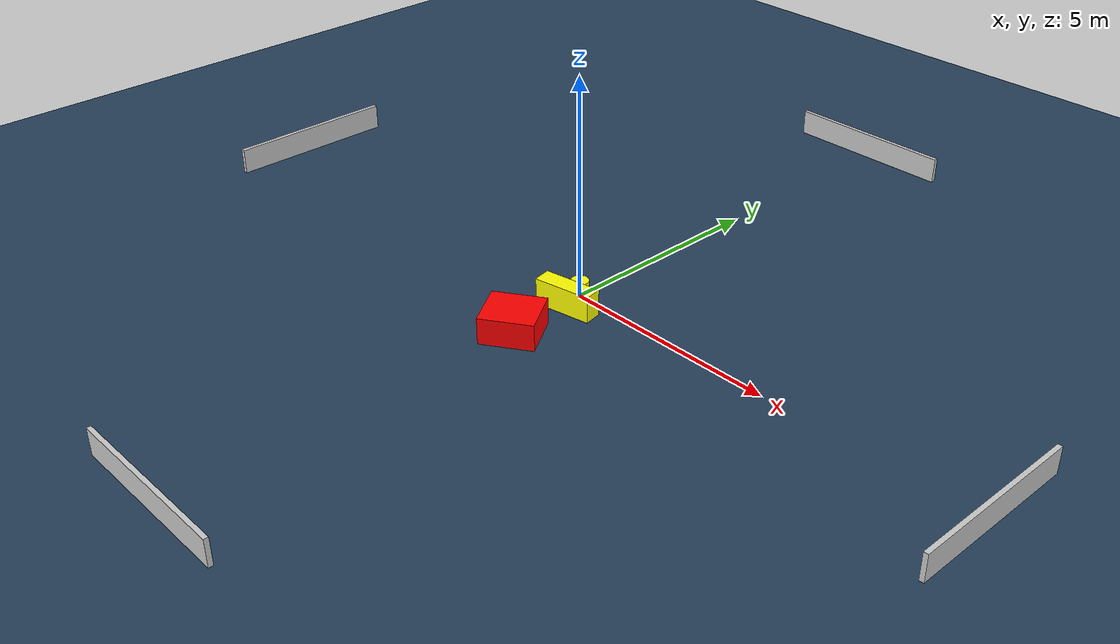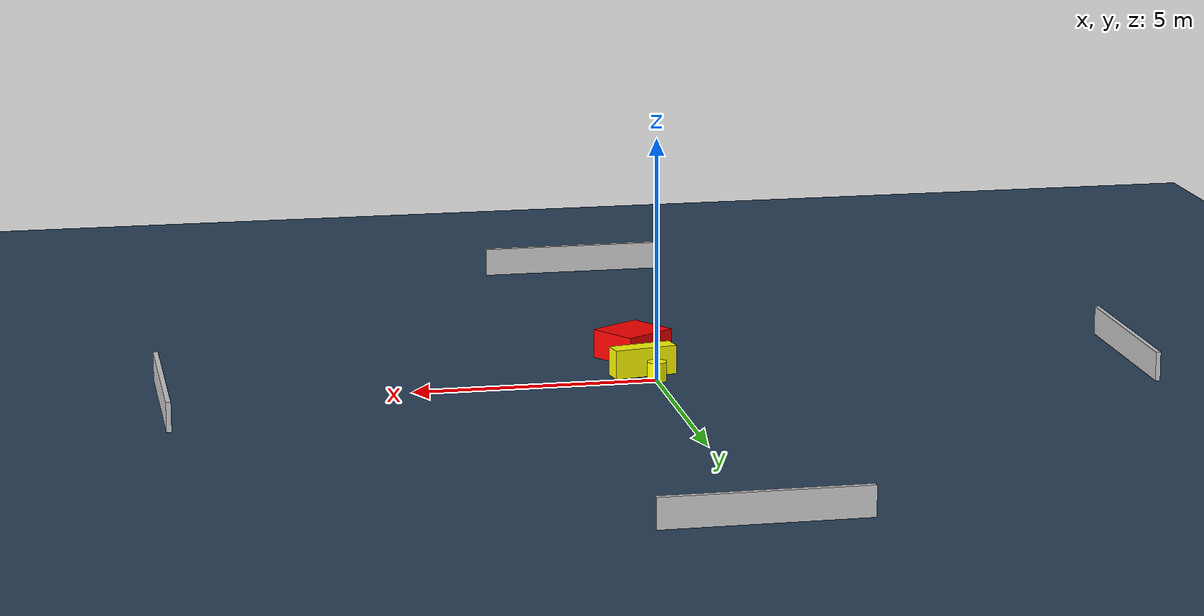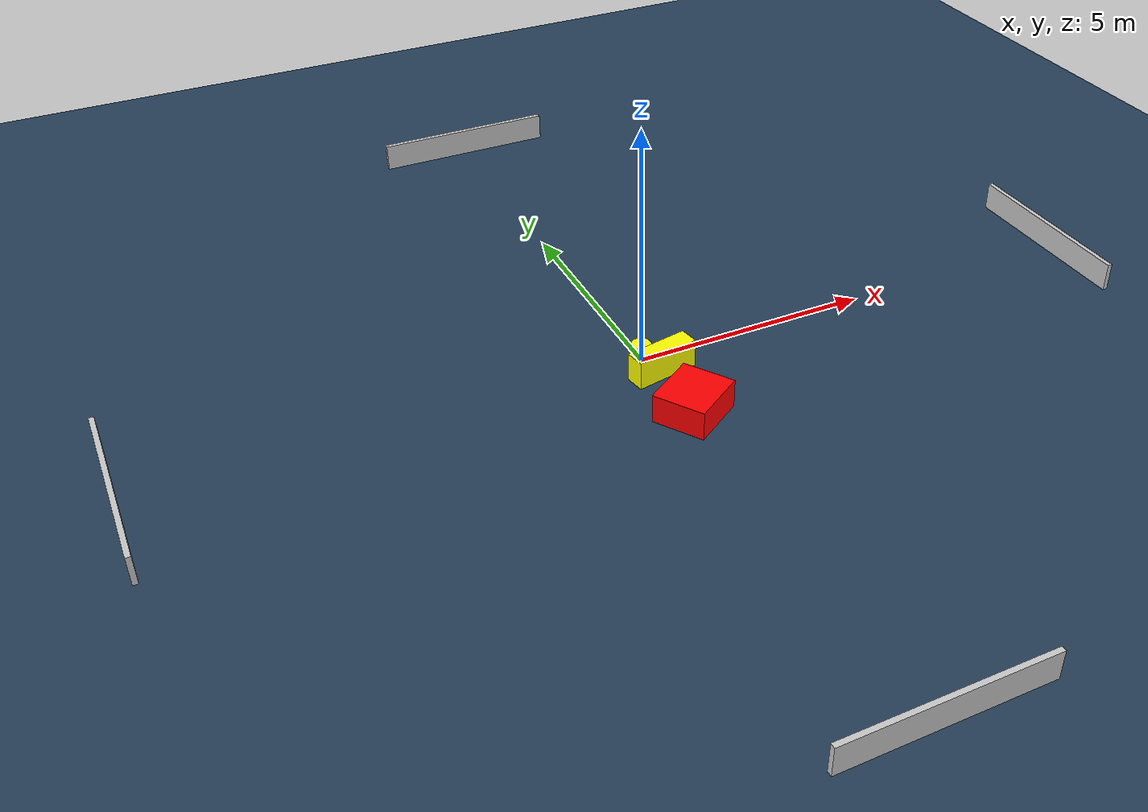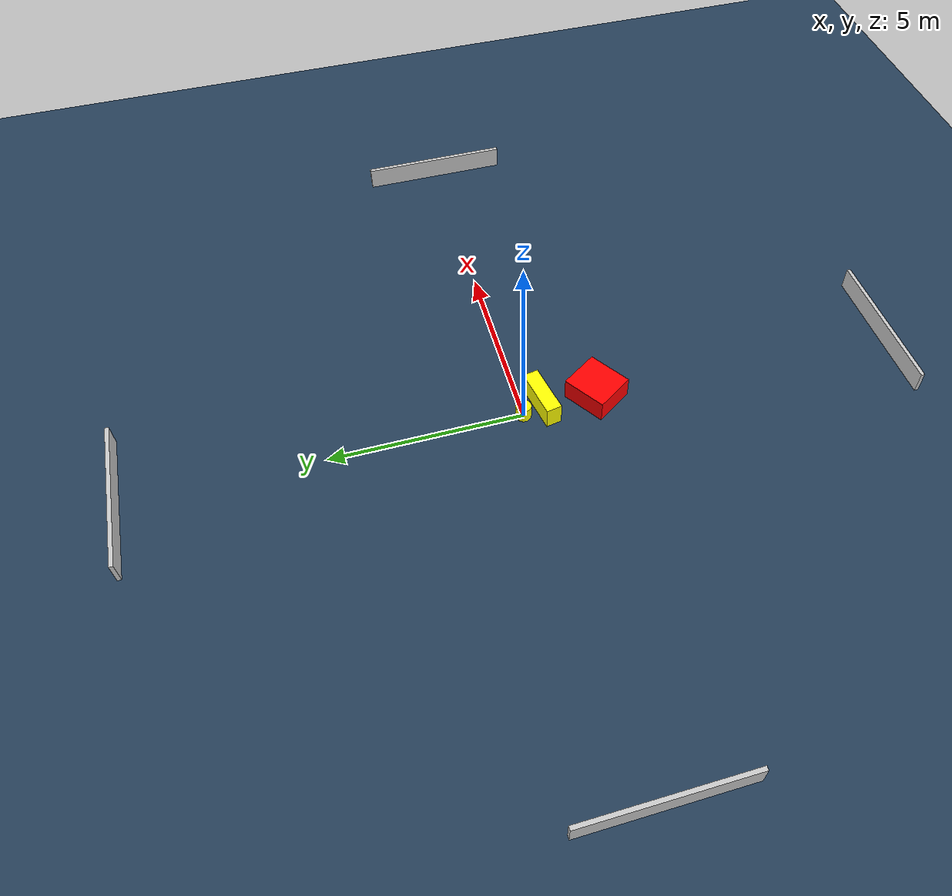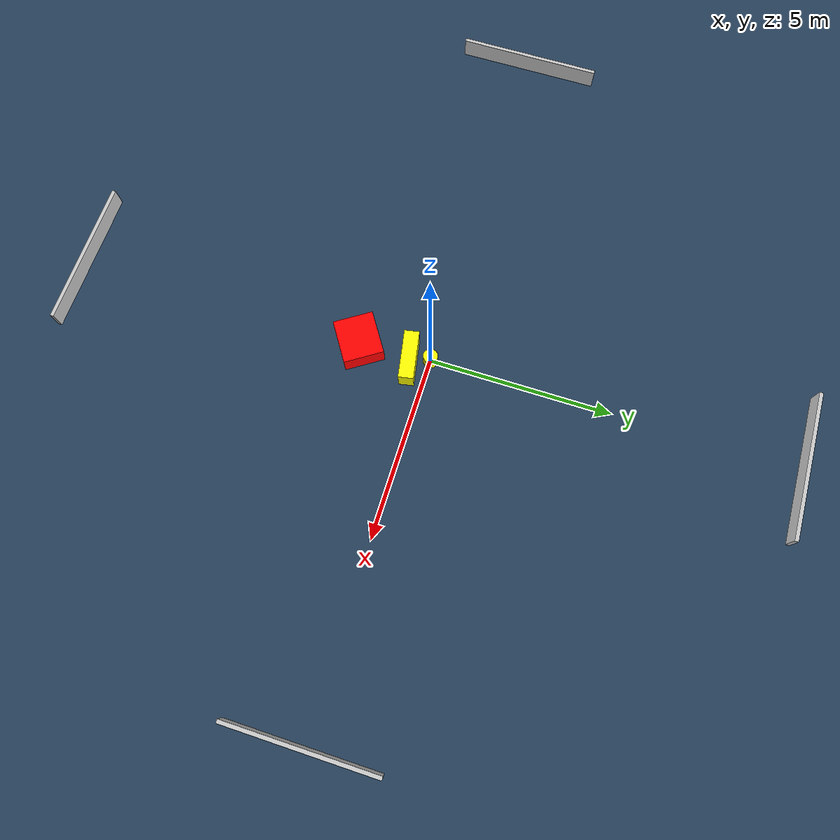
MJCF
<?xml version="1.0" ?>
<mujoco model="generated_environment">
  <option timestep="0.01" integrator="RK4" cone="elliptic"/>
  <default>
    <geom density="1"/>
  </default>
  <asset>
    <texture builtin="gradient" height="3072" name="skybox" rgb1="0.3 0.5 0.7" rgb2="0 0 0" type="skybox" width="512"/>
    <texture builtin="checker" height="300" name="groundplane" rgb1="0.2 0.3 0.4" rgb2="0.1 0.2 0.3" type="2d" width="300"/>
    <material name="groundplane" reflectance="0.2" texrepeat="5 5" texture="groundplane"/>
  </asset>
  <worldbody>
    <light dir="0 0 -1" directional="true" pos="0 0 1.5"/>
    <geom condim="3" friction="0.5 0.005 0.001" material="groundplane" name="floor" pos="0 0 0" size="0 0 0.05" type="plane"/>
    <body name="walls">
      <geom name="wall_1" condim="4" pos="-10.0 0.0 0.3" rgba="0.800000011920929 0.800000011920929 0.800000011920929 1.0" size="0.05 2.0 0.3" type="box"/>
      <geom name="wall_2" condim="4" pos="10.0 0.0 0.3" rgba="0.800000011920929 0.800000011920929 0.800000011920929 1.0" size="0.05 2.0 0.3" type="box"/>
      <geom name="wall_3" condim="4" pos="0.0 -10.0 0.3" rgba="0.800000011920929 0.800000011920929 0.800000011920929 1.0" size="2.0 0.05 0.3" type="box"/>
      <geom name="wall_4" condim="4" pos="0.0 10.0 0.3" rgba="0.800000011920929 0.800000011920929 0.800000011920929 1.0" size="2.0 0.05 0.3" type="box"/>
    </body>
    <body name="robot">
      <joint name="joint_x" type="slide" pos="0 0 0" axis="1 0 0"/>
      <joint name="joint_y" type="slide" pos="0 0 0" axis="0 1 0"/>
      <geom name="robot" type="cylinder" pos="0.0 0.0 0.2" size="0.2 0.2 0.0" mass="5.0" friction="1.0 0.005 0.0001" condim="4" rgba="1.0 1.0 0.0 1.0"/>
    </body>
    <body name="obstacle_1_movable">
      <geom name="obstacle_1_movable" condim="4" pos="0.1850090097272098 -0.5419433098231147 0.3" euler="0 0 190.53014471330653" friction="0.0 0.005 0.001" rgba="1.0 1.0 0.0 1.0" size="0.6611824118080363 0.2036084691194878 0.3" type="box" mass="0.1"/>
      <joint type="free"/>
    </body>
    <body name="obstacle_2_static">
      <geom name="obstacle_2_static" condim="4" pos="0.11927261677805129 -1.9723710708335642 0.3" euler="0 0 33.326899925143266" friction="0.0 0.005 0.001" rgba="1.0 0.0 0.0 1.0" size="0.594517257966436 0.5445993447196166 0.3" type="box"/>
    </body>
  </worldbody>
  <actuator>
    <motor name="actuator_x" joint="joint_x" gear="1" ctrlrange="-1 1"/>
    <motor name="actuator_y" joint="joint_y" gear="1" ctrlrange="-1 1"/>
  </actuator>
</mujoco>
